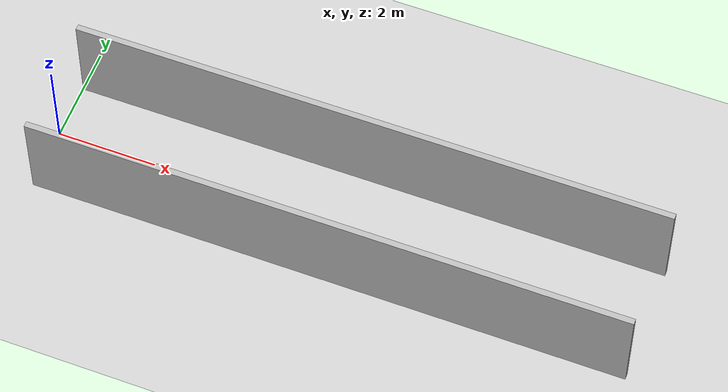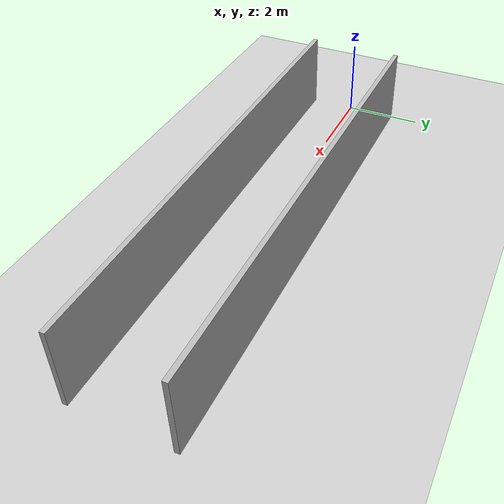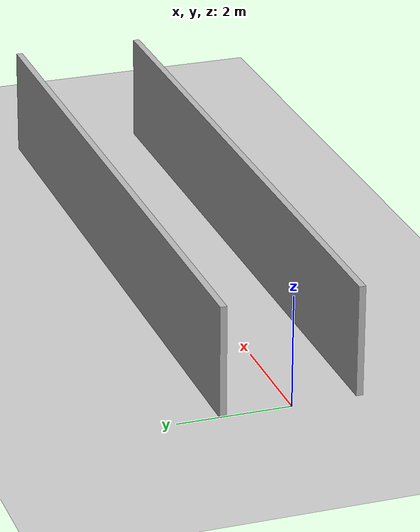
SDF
<?xml version="1.0"?>
<sdf version="1.9"><world name="office_hallway"><plugin filename="gz-sim-physics-system" name="gz::sim::systems::Physics"/><plugin filename="gz-sim-scene-broadcaster-system" name="gz::sim::systems::SceneBroadcaster"/><include><uri>model://sun</uri></include><include><uri>model://ground_plane</uri></include><model name="office_wall_left"><static>true</static><pose>6 1.2 1 0 0 0</pose><link name="link"><collision name="c"><geometry><box><size>12 0.12 2</size></box></geometry></collision><visual name="v"><geometry><box><size>12 0.12 2</size></box></geometry></visual></link></model><model name="office_wall_right"><static>true</static><pose>6 -1.2 1 0 0 0</pose><link name="link"><collision name="c"><geometry><box><size>12 0.12 2</size></box></geometry></collision><visual name="v"><geometry><box><size>12 0.12 2</size></box></geometry></visual></link></model></world></sdf>
